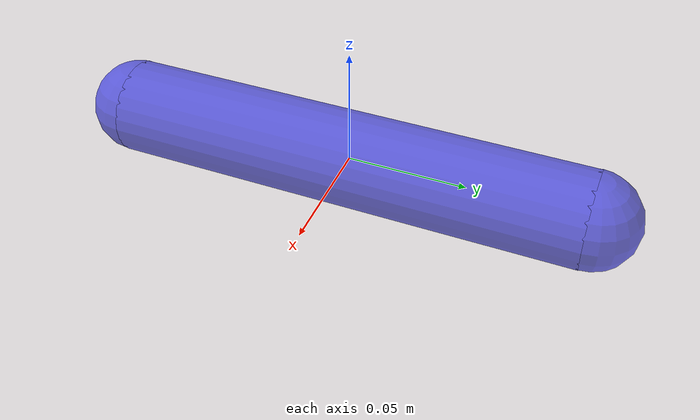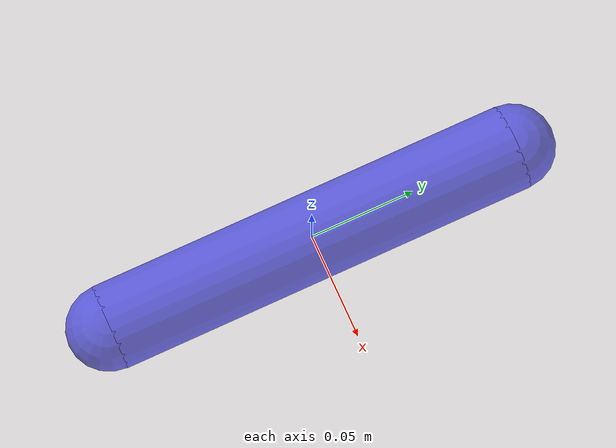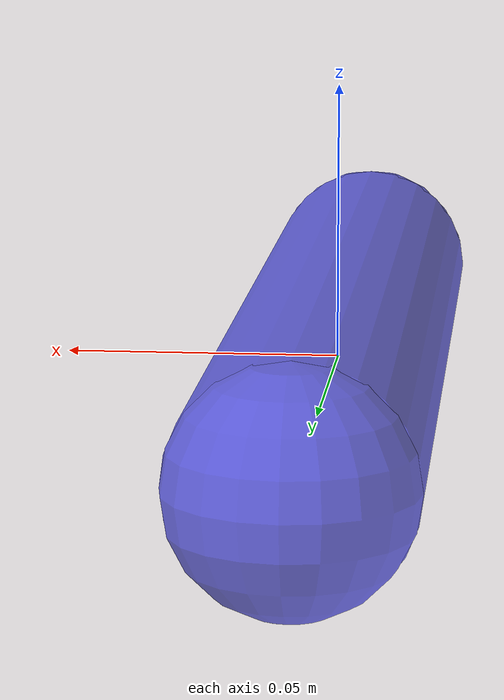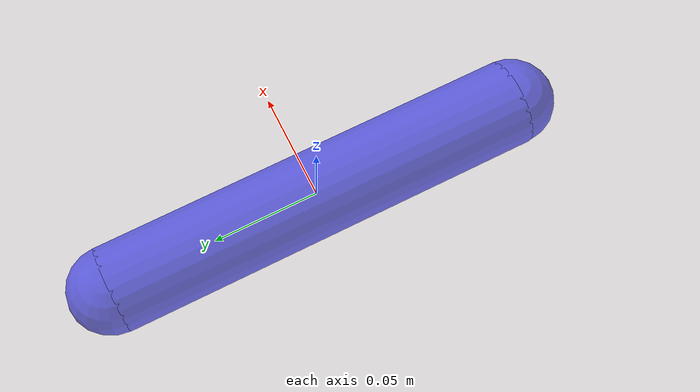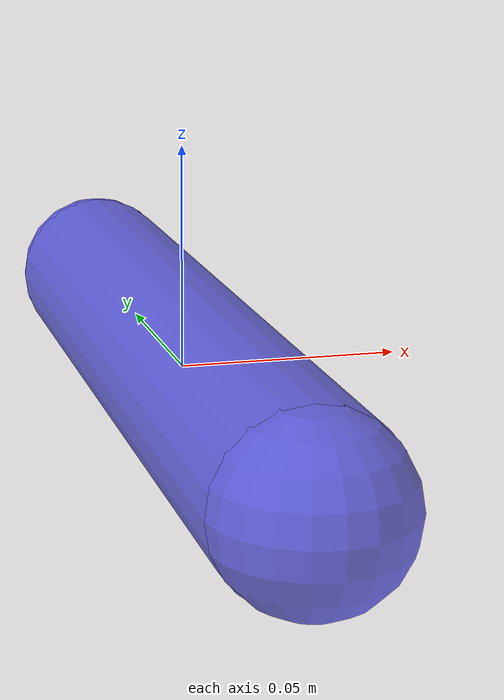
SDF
<?xml version="1.0"?>
<sdf version="1.7">
  <model name="pen">
    <link name="pen">
      <inertial>
        <mass>1.0</mass>
        <inertia>
          <ixx>0.001</ixx>
          <ixy>0</ixy>
          <ixz>0</ixz>
          <iyy>0.001</iyy>
          <iyz>0</iyz>
          <izz>0.001</izz>
        </inertia>
      </inertial>

      <visual name="visual0">
        <pose> 0 -0.1 0 0 0 0 </pose>
        <geometry>
          <sphere>
            <radius>0.02</radius>
          </sphere>
        </geometry>
        <material>
          <diffuse>0.2 0.2 0.9 0.7</diffuse>
        </material>
      </visual>

      <visual name="visual5">
        <pose> 0 0.1 0 0 0 0 </pose>
        <geometry>
          <sphere>
            <radius>0.02</radius>
          </sphere>
        </geometry>
        <material>
          <diffuse>0.2 0.2 0.9 0.7</diffuse>
        </material>
      </visual>

      <visual name="cylinder">
        <pose> 0 0 0 1.57079632 0 0 </pose>
        <geometry>
          <cylinder>
            <radius>0.02</radius>
            <length>0.2</length>
          </cylinder>
        </geometry>
        <material>
          <diffuse>0.2 0.2 0.9 0.7</diffuse>
        </material>
      </visual>

      <collision name="collision1">
        <pose> 0 -0.1 0 0 0 0 </pose>
        <geometry>
          <sphere>
            <radius>0.02</radius>
          </sphere>
        </geometry>
        <surface>
          <friction>
            <ode>
              <mu>1.0</mu>
              <mu2>1.0</mu2>
            </ode>
          </friction>
        </surface>
      </collision>

      <collision name="collision2">
        <pose> 0 -0.06 0 0 0 0 </pose>
        <geometry>
          <sphere>
            <radius>0.02</radius>
          </sphere>
        </geometry>
        <surface>
          <friction>
            <ode>
              <mu>1.0</mu>
              <mu2>1.0</mu2>
            </ode>
          </friction>
        </surface>
      </collision>

      <collision name="collision3">
        <pose> 0 -0.02 0 0 0 0 </pose>
        <geometry>
          <sphere>
            <radius>0.02</radius>
          </sphere>
        </geometry>
        <surface>
          <friction>
            <ode>
              <mu>1.0</mu>
              <mu2>1.0</mu2>
            </ode>
          </friction>
        </surface>
      </collision>

      <collision name="collision4">
        <pose> 0 0.02 0 0 0 0 </pose>
        <geometry>
          <sphere>
            <radius>0.02</radius>
          </sphere>
        </geometry>
        <surface>
          <friction>
            <ode>
              <mu>1.0</mu>
              <mu2>1.0</mu2>
            </ode>
          </friction>
        </surface>
      </collision>

      <collision name="collision5">
        <pose> 0 0.06 0 0 0 0 </pose>
        <geometry>
          <sphere>
            <radius>0.02</radius>
          </sphere>
        </geometry>
        <surface>
          <friction>
            <ode>
              <mu>1.0</mu>
              <mu2>1.0</mu2>
            </ode>
          </friction>
        </surface>
      </collision>

      <collision name="collision6">
        <pose> 0 0.1 0 0 0 0 </pose>
        <geometry>
          <sphere>
            <radius>0.02</radius>
          </sphere>
        </geometry>
        <surface>
          <friction>
            <ode>
              <mu>1.0</mu>
              <mu2>1.0</mu2>
            </ode>
          </friction>
        </surface>
      </collision>

    </link>
  </model>
</sdf>
